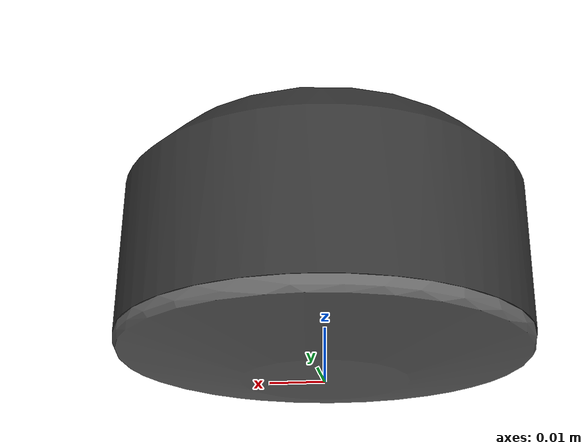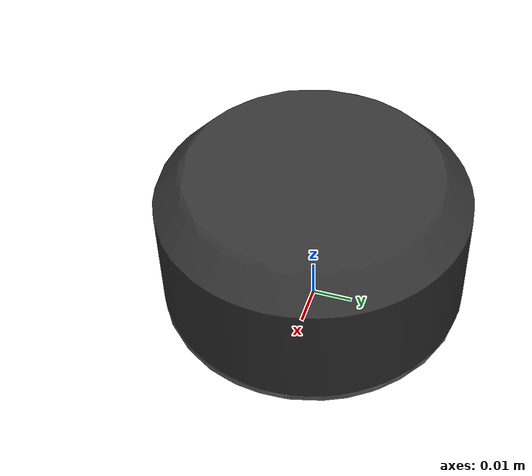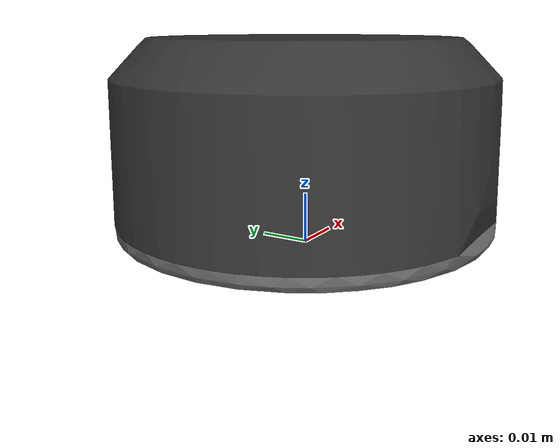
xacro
<?xml version="1.0"?>
<!--
This file shows how to import, instanciate and connect the sensor model to a given link
-->
<robot name="robotiq_arg2f_80_model" xmlns:xacro="http://ros.org/wiki/xacro">
  <!--Import macro for left arm gripper-->
  <xacro:include filename="$(find robotiq_ft_sensor)/urdf/robotiq_ft300.urdf.xacro" />

  <!--Base frame for reference-->
  <link name="world" />

  <xacro:robotiq_ft300 parent="world" prefix="">
		<origin xyz="0 0 0" rpy="0 0 0"/>
	</xacro:robotiq_ft300>

</robot>

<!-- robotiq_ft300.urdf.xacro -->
<!-- Develped by: Daniel Ordonez 20.06.2019 - daniels.ordonez@gmail.com-->

<robot xmlns:xacro="http://ros.org/wiki/xacro" name="robotiq_fts150">

    <xacro:macro name="robotiq_ft300" params="parent prefix *origin">

        <!-- mount the fts to the robot -->
        <joint name="${prefix}ft300_fix" type="fixed">
            <xacro:insert_block name="origin" />
            <parent link="${parent}" />
            <child link="${prefix}ft300_mounting_plate" />
        </joint>

        <!-- Link representing the FT300 force-torque sensor -->
        <link name="${prefix}ft300_sensor">
            <inertial>
                <origin xyz="0 0 ${-17 / 1000}" rpy="0 0 0"/>
                <mass value="0.300"/>
                <inertia ixx="${262 / 1000000}" ixy="0" ixz="${1 / 1000000}" iyy="${265 / 1000000}" iyx="0" iyz="${1 / 1000000}" izz="${219 / 1000000}" izx="${-1 / 1000000}" izy="${1 / 1000000}"/>
            </inertial>
            <visual>
                <origin xyz="0 0 0" rpy="0 0 0" />
                <geometry>
                    <mesh filename="package://robotiq_ft_sensor/meshes/visual/robotiq_ft300.STL"/>
                </geometry>
                <material name="Robotiq-Black">
                    <color rgba="0.2 0.2 0.2 1.0"/>
                </material>
            </visual>
            <collision>
                <origin xyz="0 0 0" rpy="0 0 0" />
                <geometry>
                    <mesh filename="package://robotiq_ft_sensor/meshes/collision/robotiq_ft300.STL"/>
                </geometry>
            </collision>
        </link>

        <!-- Link representing the FT300 mounting plate -->
        <link name="${prefix}ft300_mounting_plate">
            <visual>
                <origin xyz="0 0 0" rpy="0 0 0" />
                <geometry>
                    <mesh filename="package://robotiq_ft_sensor/meshes/visual/mountings/robotiq_ft300-G-062-COUPLING_G-50-4M6-1D6_20181119.STL"/>
                </geometry>
                <material name="Robotiq-Grey">
                    <color rgba="0.4 0.4 0.4 1.0"/>
                </material>
            </visual>

            <collision>
                <origin xyz="0 0 0" rpy="0 0 0" />
                <geometry>
                    <mesh filename="package://robotiq_ft_sensor/meshes/collision/mountings/robotiq_ft300-G-062-COUPLING_G-50-4M6-1D6_20181119.STL"/>
                </geometry>
            </collision>
        </link>

         <!-- Connect force sensor with mounting/coupling plate -->
        <joint name="${prefix}ft300_mounting_plate_joint" type="fixed">
            <origin xyz="0 0 0.0415" rpy="0 ${pi} 0"/>
            <parent link="${prefix}ft300_mounting_plate" />
            <child link="${prefix}ft300_sensor" />
        </joint>

        <joint name="${prefix}measurment_joint" type="fixed">
            <origin xyz="0 0 0" rpy="0 ${pi} ${-pi/2}" />
            <parent link="${prefix}ft300_sensor" />
            <child link="${prefix}robotiq_ft_frame_id" />
        </joint>

        <link name="${prefix}robotiq_ft_frame_id"/>

    </xacro:macro>
</robot>
